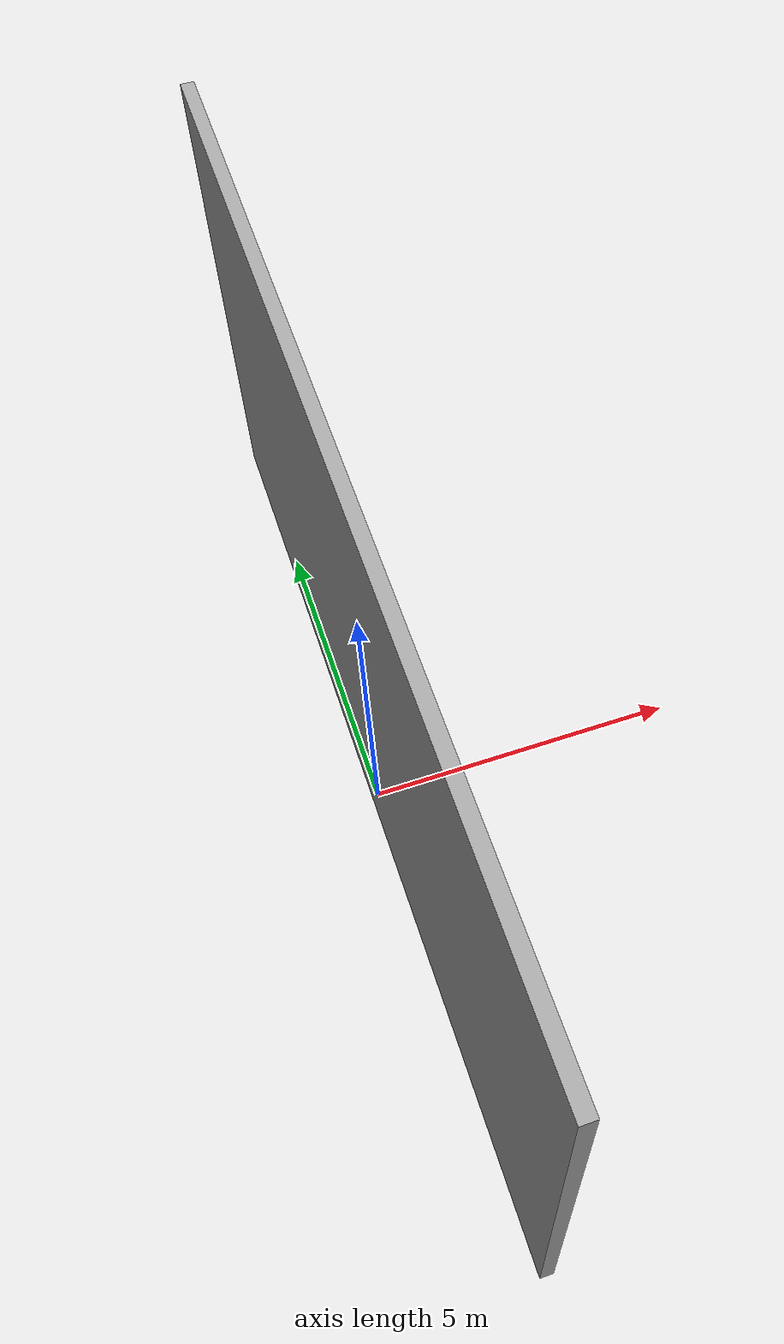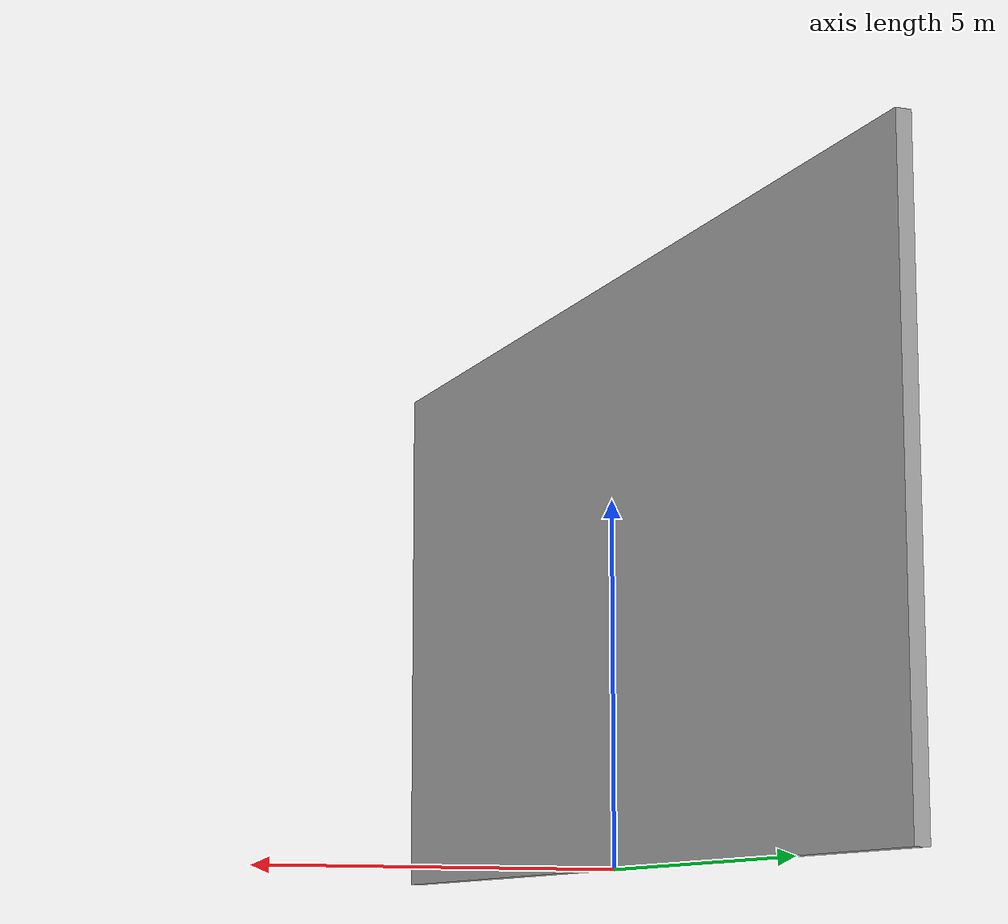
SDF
<sdf version="1.4">
  <!--Generated by blend2model.py-->
  <model name="blackwall">
    <pose>0.0 0.0 0.0  0.0 0.0 0.0</pose>
    <static>true</static>
    <link name="body">
      <collision name="collision">
        <geometry>
          <mesh>
            <uri>model://blackwall/meshes/blackwall.dae</uri>
            <scale>1 1 1</scale>
          </mesh>
        </geometry>
      </collision>
      <visual name="visual">
        <geometry>
          <mesh>
            <uri>model://blackwall/meshes/blackwall.dae</uri>
            <scale>1 1 1</scale>
          </mesh>
        </geometry>
      </visual>
    </link>
  </model>
</sdf>
